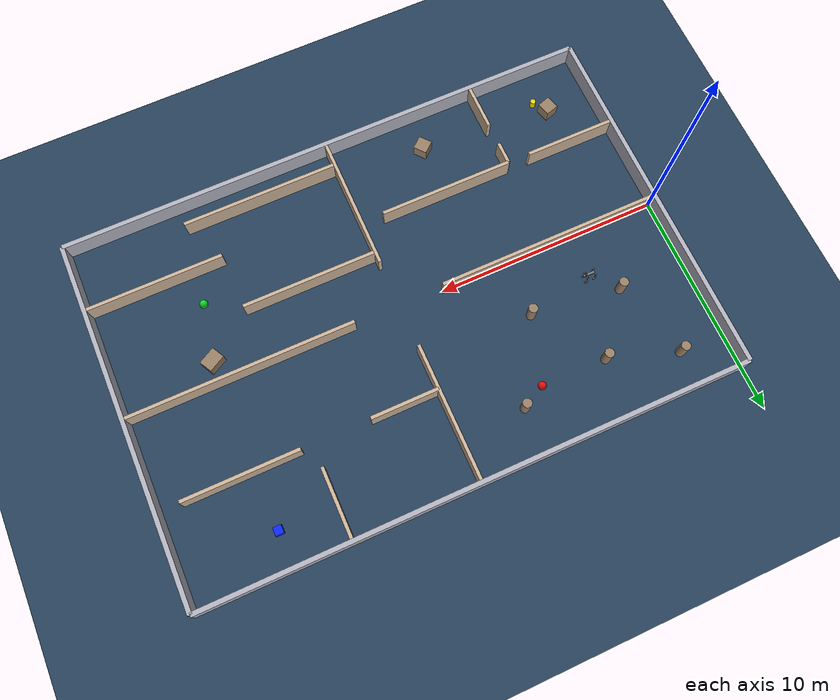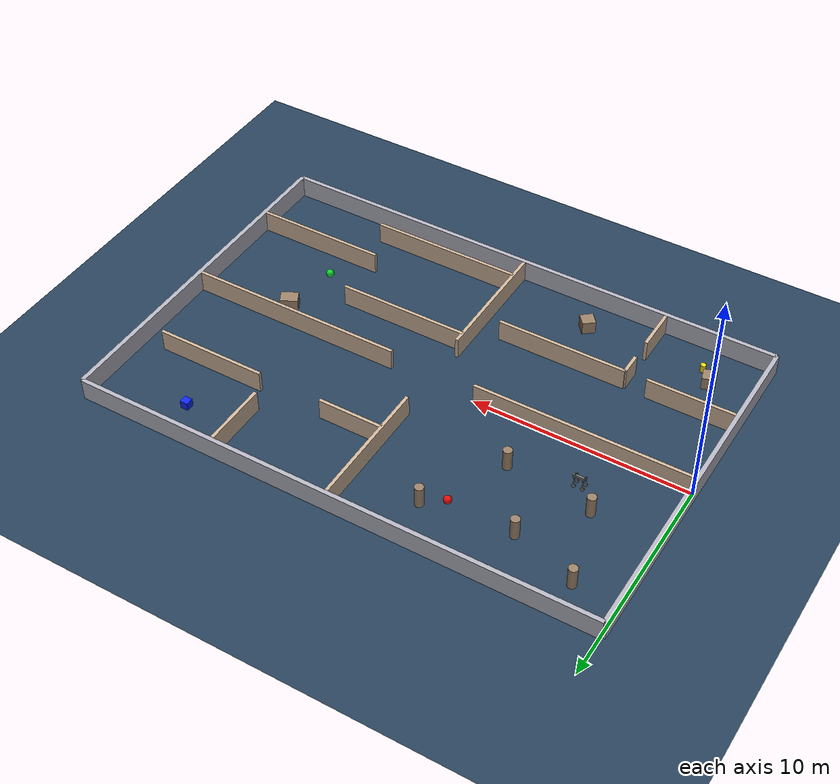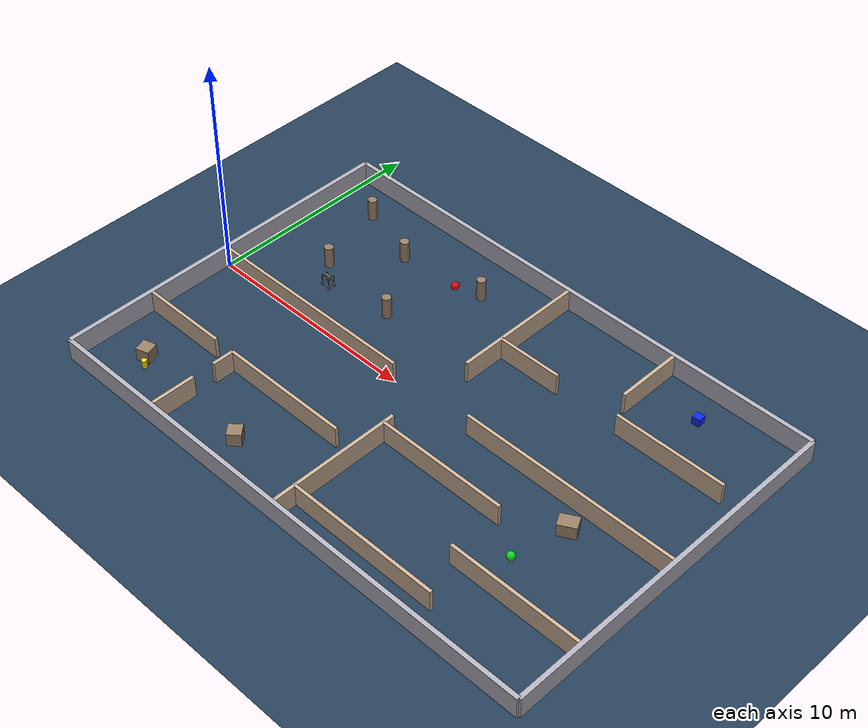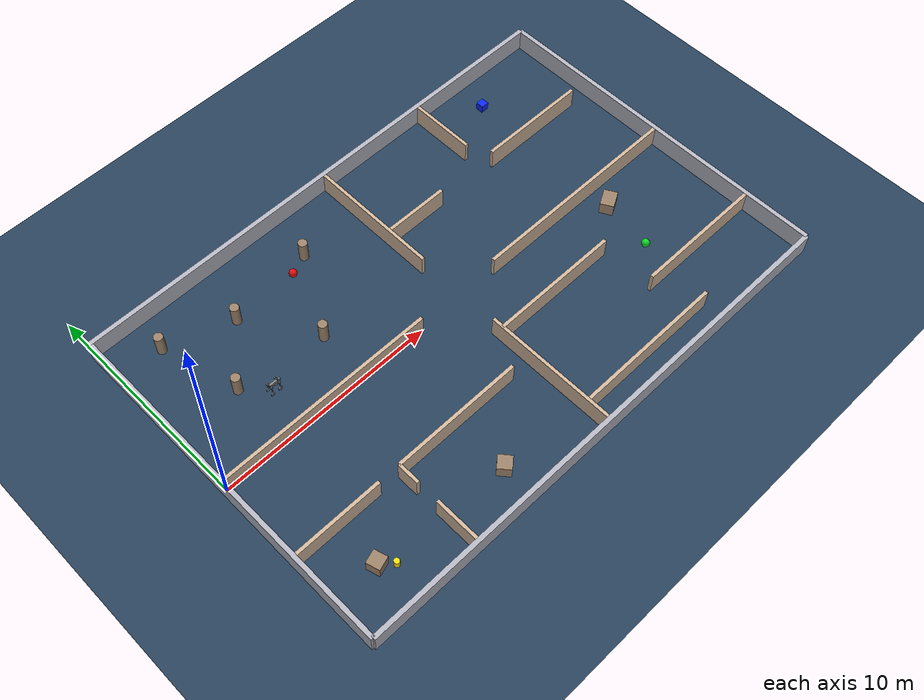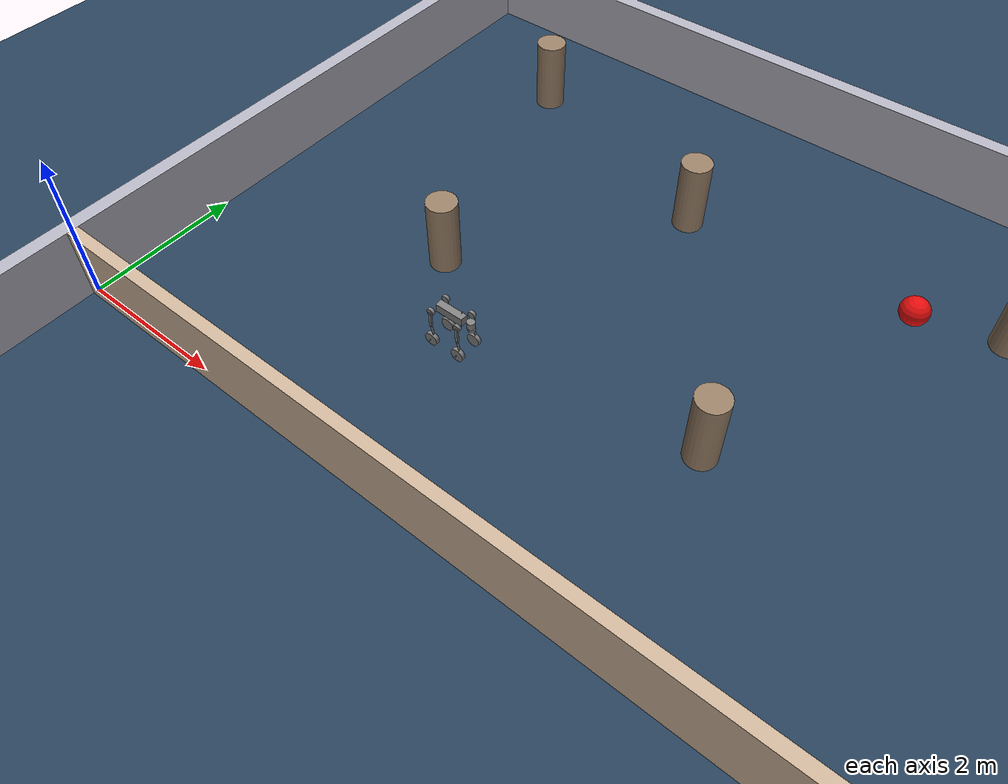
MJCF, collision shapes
<mujoco model="demo3">
  <compiler angle="radian" meshdir="assets" autolimits="true"/>

  <option timestep="0.002" gravity="0 0 -9.81" integrator="implicitfast"
          cone="elliptic" impratio="100"/>

  <statistic center="12 0 0.5" extent="16"/>

  <visual>
    <headlight diffuse="0.6 0.6 0.6" ambient="0.3 0.3 0.3" specular="0 0 0"/>
    <rgba haze="0.15 0.25 0.35 1"/>
    <global azimuth="-130" elevation="-20" offwidth="1920" offheight="1080"/>
    <quality shadowsize="4096" offsamples="8"/>
    <map shadowscale="0.5" shadowclip="1"/>
  </visual>

  <default>
    <default class="go2">
      <geom friction="0.4" margin="0.001" condim="1"/>
      <joint axis="0 1 0" damping="0.1" armature="0.01" frictionloss="0.2"/>
      <motor ctrlrange="-23.7 23.7"/>
      <default class="abduction">
        <joint axis="1 0 0" range="-1.0472 1.0472"/>
      </default>
      <default class="hip">
        <default class="front_hip">
          <joint range="-1.5708 3.4907"/>
        </default>
        <default class="back_hip">
          <joint range="-0.5236 4.5379"/>
        </default>
      </default>
      <default class="knee">
        <joint range="-2.7227 -0.83776"/>
        <motor ctrlrange="-45.43 45.43"/>
      </default>
      <default class="visual">
        <geom type="mesh" contype="0" conaffinity="0" group="2"/>
      </default>
      <default class="collision">
        <geom group="3"/>
        <default class="foot">
          <geom size="0.022" pos="-0.002 0 -0.2264" priority="1" condim="6"
            friction="0.8 0.02 0.01"/>
        </default>
      </default>
    </default>
    <default class="world">
      <geom contype="1" conaffinity="1"/>
    </default>
  </default>

  <asset>
    <!-- Skybox -->
    <texture type="skybox" builtin="gradient" rgb1="0.3 0.5 0.7" rgb2="0 0 0"
             width="512" height="3072"/>

    <!-- Ground -->
    <texture type="2d" name="groundplane" builtin="checker" mark="edge"
             rgb1="0.2 0.3 0.4" rgb2="0.1 0.2 0.3" markrgb="0.8 0.8 0.8"
             width="300" height="300"/>
    <material name="groundplane" texture="groundplane" texuniform="true"
              texrepeat="5 5" reflectance="0.2"/>

    <!-- Robot materials -->
    <material name="metal" rgba=".9 .95 .95 1"/>
    <material name="black" rgba="0 0 0 1"/>
    <material name="white" rgba="1 1 1 1"/>
    <material name="gray" rgba="0.671705 0.692426 0.774270 1"/>

    <!-- Robot mesh assets (official Unitree OBJ) -->
    <mesh file="base_0.obj"/>
    <mesh file="base_1.obj"/>
    <mesh file="base_2.obj"/>
    <mesh file="base_3.obj"/>
    <mesh file="base_4.obj"/>
    <mesh file="hip_0.obj"/>
    <mesh file="hip_1.obj"/>
    <mesh file="thigh_0.obj"/>
    <mesh file="thigh_1.obj"/>
    <mesh file="thigh_mirror_0.obj"/>
    <mesh file="thigh_mirror_1.obj"/>
    <mesh file="calf_mirror_0.obj"/>
    <mesh file="calf_mirror_1.obj"/>
    <mesh file="calf.stl"/>
    <mesh file="calf_mirror.stl"/>
    <mesh file="foot.obj"/>
    <mesh file="wheel.stl"/>

    <!-- World materials -->
    <material name="wall_mat" rgba="0.7 0.7 0.75 1"/>
    <material name="divider_mat" rgba="0.8 0.7 0.6 1"/>
    <material name="green_mat" rgba="0.0 1.0 0.0 1" specular="0.3"/>
    <material name="obstacle_mat" rgba="0.6 0.5 0.4 1"/>
  </asset>

  <worldbody>
    <!-- Lighting -->
    <light pos="12 0 10" dir="0 0 -1" directional="true" diffuse="0.8 0.8 0.8"
           castshadow="true"/>

    <!-- Ground plane -->
    <geom name="ground" type="plane" size="50 50 0.1" material="groundplane"
          class="world"/>

    <!-- === Outer walls (24×16m, x∈[0,24], y∈[-8,8]) === -->
    <geom name="wall_north" type="box" pos="12.0 8.1 0.5"
          size="12.1 0.1 0.5" material="wall_mat" class="world"/>
    <geom name="wall_south" type="box" pos="12.0 -8.1 0.5"
          size="12.1 0.1 0.5" material="wall_mat" class="world"/>
    <geom name="wall_west" type="box" pos="-0.1 0 0.5"
          size="0.1 8.1 0.5" material="wall_mat" class="world"/>
    <geom name="wall_east" type="box" pos="24.1 0 0.5"
          size="0.1 8.1 0.5" material="wall_mat" class="world"/>

    <geom name="cross_h_w" type="box" pos="5.0 0 0.5"
          size="5.0 0.075 0.5" material="divider_mat" class="world"/>
    <geom name="cross_h_e" type="box" pos="19.0 0 0.5"
          size="5.0 0.075 0.5" material="divider_mat" class="world"/>
    <geom name="cross_v_n" type="box" pos="12 5.0 0.5"
          size="0.075 3.0 0.5" material="divider_mat" class="world"/>
    <geom name="cross_v_s" type="box" pos="12 -5.0 0.5"
          size="0.075 3.0 0.5" material="divider_mat" class="world"/>

    <geom name="ne_div_h_west" type="box" pos="13.5 4.0 0.5"
          size="1.5 0.075 0.5" material="divider_mat" class="world"/>
    <geom name="ne_div_h_east" type="box" pos="20.55 4.0 0.5"
          size="2.55 0.075 0.5" material="divider_mat" class="world"/>
    <geom name="ne_div_v_north" type="box" pos="17.5 6.5 0.5"
          size="0.075 1.5 0.5" material="divider_mat" class="world"/>

    <geom name="nw_pillar_1" type="cylinder" pos="3.0 3.0 0.5"
          size="0.20 0.5" material="obstacle_mat" class="world"/>
    <geom name="nw_pillar_2" type="cylinder" pos="7.0 2.5 0.5"
          size="0.20 0.5" material="obstacle_mat" class="world"/>
    <geom name="nw_pillar_3" type="cylinder" pos="5.0 5.5 0.5"
          size="0.20 0.5" material="obstacle_mat" class="world"/>
    <geom name="nw_pillar_4" type="cylinder" pos="9.0 6.0 0.5"
          size="0.20 0.5" material="obstacle_mat" class="world"/>
    <geom name="nw_pillar_5" type="cylinder" pos="2.0 6.5 0.5"
          size="0.20 0.5" material="obstacle_mat" class="world"/>

    <geom name="sw_h_1" type="box" pos="2.0 -4.0 0.5"
          size="2.0 0.075 0.5" material="divider_mat" class="world"/>
    <geom name="sw_h_2" type="box" pos="8.0 -4.0 0.5"
          size="3.0 0.075 0.5" material="divider_mat" class="world"/>
    <geom name="sw_v_1" type="box" pos="5.0 -4.5 0.5"
          size="0.075 0.5 0.5" material="divider_mat" class="world"/>
    <geom name="sw_v_2" type="box" pos="5.0 -7.0 0.5"
          size="0.075 1.0 0.5" material="divider_mat" class="world"/>

    <geom name="zigzag_1" type="box" pos="15.0 -2.5 0.5"
          size="3.0 0.075 0.5" material="divider_mat" class="world"/>
    <geom name="zigzag_2" type="box" pos="21.0 -5.0 0.5"
          size="3.0 0.075 0.5" material="divider_mat" class="world"/>
    <geom name="zigzag_3" type="box" pos="15.5 -7.0 0.5"
          size="3.5 0.075 0.5" material="divider_mat" class="world"/>

    <geom name="artifact_red_sphere"
          type="sphere" pos="8.0 5.5 0.35" size="0.18"
          rgba="0.9 0.05 0.05 1" contype="0" conaffinity="0" group="1"/>

    <geom name="artifact_blue_box"
          type="box" pos="20.0 6.5 0.35" size="0.18 0.18 0.18"
          rgba="0.05 0.15 0.95 1" contype="0" conaffinity="0" group="1"/>

    <geom name="artifact_yellow_cylinder"
          type="cylinder" pos="2.5 -6.5 0.35" size="0.12 0.18"
          rgba="0.95 0.85 0.05 1" contype="0" conaffinity="0" group="1"/>

    <geom name="artifact_green_sphere"
          type="sphere" pos="19.5 -3.5 0.35" size="0.18"
          rgba="0.05 0.85 0.15 1" contype="0" conaffinity="0" group="1"/>

    <!-- === Clutter box obstacles (sparse) === -->
    <geom name="box_obstacle_1" type="box" pos="2.0 -6.0 0.3"
          size="0.3 0.3 0.3" euler="0 0 0.3" material="obstacle_mat" class="world"/>
    <geom name="box_obstacle_2" type="box" pos="8.0 -6.5 0.3"
          size="0.3 0.3 0.3" euler="0 0 0.7" material="obstacle_mat" class="world"/>
    <geom name="box_obstacle_3" type="box" pos="20.0 -1.0 0.3"
          size="0.4 0.3 0.3" euler="0 0 0.5" material="obstacle_mat" class="world"/>

    <!-- === Go2W Robot (spawn at (4, 2, 0.6) in NW quadrant) === -->
    <body name="base_link" pos="4.0 2.0 0.6" childclass="go2">
      <inertial pos="0.021112 0 -0.005366" quat="-0.000543471 0.713435 -0.00173769 0.700719"
        mass="6.921" diaginertia="0.107027 0.0980771 0.0244531"/>
      <freejoint name="root"/>

      <!-- Base visual meshes (OBJ with materials) -->
      <geom mesh="base_0" material="black" class="visual"/>
      <geom mesh="base_1" material="black" class="visual"/>
      <geom mesh="base_2" material="black" class="visual"/>
      <geom mesh="base_3" material="white" class="visual"/>
      <geom mesh="base_4" material="gray" class="visual"/>
      <!-- Base collision -->
      <geom name="base_collision" size="0.1881 0.04675 0.057" type="box" class="collision"/>
      <geom name="head_upper_collision" size="0.05 0.045" pos="0.285 0 0.01" type="cylinder" class="collision"/>
      <geom name="head_lower_collision" size="0.047" pos="0.293 0 -0.06" class="collision"/>

      <!-- Body-frame site for pose sensors (avoids inertial-frame rotation) -->
      <site name="base_link_site" pos="0 0 0" size="0.01"/>

      <!-- IMU site -->
      <site name="imu" pos="-0.02557 0 0.04232" size="0.01"/>

      <!-- Livox MID-360 LiDAR site (matches URDF: base→imu→livox_mid360_base) -->
      <!-- pos = imu_pos + livox_offset = (-0.02557+0.1870, 0, 0.04232+0.0803) -->
      <site name="livox_mid360" pos="0.16143 0 0.12262" euler="0 0.2269 0" size="0.01"/>

      <camera name="front_camera" pos="0.30 0 -0.01"
              xyaxes="0 -1 0 0.0872 0 0.9962"
              fovy="80" resolution="1280 720" mode="fixed"/>

      <!-- ====== Front-Left leg ====== -->
      <body name="FL_hip" pos="0.1934 0.0465 0">
        <inertial pos="-0.0054 0.00194 -0.000105" quat="0.497014 0.499245 0.505462 0.498237"
          mass="0.678" diaginertia="0.00088403 0.000596003 0.000479967"/>
        <joint name="FL_hip_joint" class="abduction"/>
        <geom mesh="hip_0" material="metal" class="visual"/>
        <geom mesh="hip_1" material="gray" class="visual"/>
        <geom name="FL_hip_collision" size="0.046 0.02" pos="0 0.08 0" quat="1 1 0 0" type="cylinder" class="collision"/>
        <body name="FL_thigh" pos="0 0.0955 0">
          <inertial pos="-0.00374 -0.0223 -0.0327" quat="0.829533 0.0847635 -0.0200632 0.551623"
            mass="1.152" diaginertia="0.00594973 0.00584149 0.000878787"/>
          <joint name="FL_thigh_joint" class="front_hip"/>
          <geom mesh="thigh_0" material="metal" class="visual"/>
          <geom mesh="thigh_1" material="gray" class="visual"/>
          <geom name="FL_thigh_collision" size="0.1065 0.01225 0.017" pos="0 0 -0.1065" quat="0.707107 0 0.707107 0"
            type="box" class="collision"/>
          <body name="FL_calf" pos="0 0 -0.213">
            <inertial pos="0.00629595 -0.000622121 -0.141417"
              quat="0.710672 0.00154099 -0.00450087 0.703508"
              mass="0.241352" diaginertia="0.0014901 0.00146356 5.31397e-05"/>
            <joint name="FL_calf_joint" class="knee"/>
            <geom mesh="calf" material="gray" class="visual"/>
            <geom name="FL_calf_upper_collision" size="0.012 0.06" pos="0.008 0 -0.06" quat="0.994493 0 -0.104807 0"
              type="cylinder" class="collision"/>
            <geom name="FL_calf_lower_collision" size="0.011 0.0325" pos="0.02 0 -0.148" quat="0.999688 0 0.0249974 0"
              type="cylinder" class="collision"/>
            <body name="FL_foot" pos="0 0 -0.2264">
              <inertial pos="-0.0 0.04 -0.0"
                quat="0.661419 0.248219 0.250051 0.662108" mass="0.98"
                diaginertia="0.003 0.0016 0.0016"/>
              <joint name="FL_foot_joint" pos="0 0 0" axis="0 1 0"/>
              <geom type="mesh" rgba="0.15 0.15 0.15 1" mesh="wheel" pos="0 0.0 0"
                quat="0.0 1.0 0.0 0.0" class="visual"/>
              <!-- Explicit named cylinder collision geom (replaces unnamed
                   mesh collision that MuJoCo was not reliably picking up
                   for wheel-vs-wall contacts). -->
              <geom name="FL_wheel_collision" type="cylinder" size="0.086 0.026"
                pos="0 0 0" quat="0.707107 0.707107 0 0"
                class="collision" condim="6" priority="1"
                friction="0.8 0.02 0.01"/>
              <site name="FL_foot_site" pos="0 0.04 0" size="0.01"/>
            </body>
          </body>
        </body>
      </body>

      <!-- ====== Front-Right leg ====== -->
      <body name="FR_hip" pos="0.1934 -0.0465 0">
        <inertial pos="-0.0054 -0.00194 -0.000105" quat="0.498237 0.505462 0.499245 0.497014"
          mass="0.678" diaginertia="0.00088403 0.000596003 0.000479967"/>
        <joint name="FR_hip_joint" class="abduction"/>
        <geom mesh="hip_0" material="metal" class="visual" quat="4.63268e-05 1 0 0"/>
        <geom mesh="hip_1" material="gray" class="visual" quat="4.63268e-05 1 0 0"/>
        <geom name="FR_hip_collision" size="0.046 0.02" pos="0 -0.08 0" quat="0.707107 0.707107 0 0" type="cylinder"
          class="collision"/>
        <body name="FR_thigh" pos="0 -0.0955 0">
          <inertial pos="-0.00374 0.0223 -0.0327" quat="0.551623 -0.0200632 0.0847635 0.829533"
            mass="1.152" diaginertia="0.00594973 0.00584149 0.000878787"/>
          <joint name="FR_thigh_joint" class="front_hip"/>
          <geom mesh="thigh_mirror_0" material="metal" class="visual"/>
          <geom mesh="thigh_mirror_1" material="gray" class="visual"/>
          <geom name="FR_thigh_collision" size="0.1065 0.01225 0.017" pos="0 0 -0.1065" quat="0.707107 0 0.707107 0"
            type="box" class="collision"/>
          <body name="FR_calf" pos="0 0 -0.213">
            <inertial pos="0.00629595 0.000622121 -0.141417"
              quat="0.703508 -0.00450087 0.00154099 0.710672"
              mass="0.241352" diaginertia="0.0014901 0.00146356 5.31397e-05"/>
            <joint name="FR_calf_joint" class="knee"/>
            <geom mesh="calf_mirror" material="gray" class="visual"/>
            <geom name="FR_calf_upper_collision" size="0.013 0.06" pos="0.01 0 -0.06" quat="0.995004 0 -0.0998334 0"
              type="cylinder" class="collision"/>
            <geom name="FR_calf_lower_collision" size="0.011 0.0325" pos="0.02 0 -0.148" quat="0.999688 0 0.0249974 0"
              type="cylinder" class="collision"/>
            <body name="FR_foot" pos="0 0 -0.2264">
              <inertial pos="-0.0 -0.04 -0.0"
                quat="0.661419 0.248219 0.250051 0.662108" mass="0.98"
                diaginertia="0.003 0.0016 0.0016"/>
              <joint name="FR_foot_joint" pos="0 0 0" axis="0 1 0"/>
              <geom type="mesh" rgba="0.15 0.15 0.15 1" mesh="wheel" pos="0 -0.0 0" class="visual"/>
              <geom name="FR_wheel_collision" type="cylinder" size="0.086 0.026"
                pos="0 0 0" quat="0.707107 0.707107 0 0"
                class="collision" condim="6" priority="1"
                friction="0.8 0.02 0.01"/>
              <site name="FR_foot_site" pos="0 -0.04 0" size="0.01"/>
            </body>
          </body>
        </body>
      </body>

      <!-- ====== Rear-Left leg ====== -->
      <body name="RL_hip" pos="-0.1934 0.0465 0">
        <inertial pos="0.0054 0.00194 -0.000105" quat="0.505462 0.498237 0.497014 0.499245"
          mass="0.678" diaginertia="0.00088403 0.000596003 0.000479967"/>
        <joint name="RL_hip_joint" class="abduction"/>
        <geom mesh="hip_0" material="metal" class="visual" quat="4.63268e-05 0 1 0"/>
        <geom mesh="hip_1" material="gray" class="visual" quat="4.63268e-05 0 1 0"/>
        <geom name="RL_hip_collision" size="0.046 0.02" pos="0 0.08 0" quat="0.707107 0.707107 0 0" type="cylinder"
          class="collision"/>
        <body name="RL_thigh" pos="0 0.0955 0">
          <inertial pos="-0.00374 -0.0223 -0.0327" quat="0.829533 0.0847635 -0.0200632 0.551623"
            mass="1.152" diaginertia="0.00594973 0.00584149 0.000878787"/>
          <joint name="RL_thigh_joint" class="back_hip"/>
          <geom mesh="thigh_0" material="metal" class="visual"/>
          <geom mesh="thigh_1" material="gray" class="visual"/>
          <geom name="RL_thigh_collision" size="0.1065 0.01225 0.017" pos="0 0 -0.1065" quat="0.707107 0 0.707107 0"
            type="box" class="collision"/>
          <body name="RL_calf" pos="0 0 -0.213">
            <inertial pos="0.00629595 -0.000622121 -0.141417"
              quat="0.710672 0.00154099 -0.00450087 0.703508"
              mass="0.241352" diaginertia="0.0014901 0.00146356 5.31397e-05"/>
            <joint name="RL_calf_joint" class="knee"/>
            <geom mesh="calf" material="gray" class="visual"/>
            <geom name="RL_calf_upper_collision" size="0.013 0.06" pos="0.01 0 -0.06" quat="0.995004 0 -0.0998334 0"
              type="cylinder" class="collision"/>
            <geom name="RL_calf_lower_collision" size="0.011 0.0325" pos="0.02 0 -0.148" quat="0.999688 0 0.0249974 0"
              type="cylinder" class="collision"/>
            <body name="RL_foot" pos="0 0 -0.2264">
              <inertial pos="-0.0 0.04 -0.0"
                quat="0.661419 0.248219 0.250051 0.662108" mass="0.98"
                diaginertia="0.003 0.0016 0.0016"/>
              <joint name="RL_foot_joint" pos="0 0 0" axis="0 1 0"/>
              <geom type="mesh" rgba="0.15 0.15 0.15 1" mesh="wheel" pos="0 0.0 0"
                quat="0.0 1.0 0.0 0.0" class="visual"/>
              <geom name="RL_wheel_collision" type="cylinder" size="0.086 0.026"
                pos="0 0 0" quat="0.707107 0.707107 0 0"
                class="collision" condim="6" priority="1"
                friction="0.8 0.02 0.01"/>
              <site name="RL_foot_site" pos="0 0.04 0" size="0.01"/>
            </body>
          </body>
        </body>
      </body>

      <!-- ====== Rear-Right leg ====== -->
      <body name="RR_hip" pos="-0.1934 -0.0465 0">
        <inertial pos="0.0054 -0.00194 -0.000105" quat="0.499245 0.497014 0.498237 0.505462"
          mass="0.678" diaginertia="0.00088403 0.000596003 0.000479967"/>
        <joint name="RR_hip_joint" class="abduction"/>
        <geom mesh="hip_0" material="metal" class="visual"
          quat="2.14617e-09 4.63268e-05 4.63268e-05 -1"/>
        <geom mesh="hip_1" material="gray" class="visual"
          quat="2.14617e-09 4.63268e-05 4.63268e-05 -1"/>
        <geom name="RR_hip_collision" size="0.046 0.02" pos="0 -0.08 0" quat="0.707107 0.707107 0 0" type="cylinder"
          class="collision"/>
        <body name="RR_thigh" pos="0 -0.0955 0">
          <inertial pos="-0.00374 0.0223 -0.0327" quat="0.551623 -0.0200632 0.0847635 0.829533"
            mass="1.152" diaginertia="0.00594973 0.00584149 0.000878787"/>
          <joint name="RR_thigh_joint" class="back_hip"/>
          <geom mesh="thigh_mirror_0" material="metal" class="visual"/>
          <geom mesh="thigh_mirror_1" material="gray" class="visual"/>
          <geom name="RR_thigh_collision" size="0.1065 0.01225 0.017" pos="0 0 -0.1065" quat="0.707107 0 0.707107 0"
            type="box" class="collision"/>
          <body name="RR_calf" pos="0 0 -0.213">
            <inertial pos="0.00629595 0.000622121 -0.141417"
              quat="0.703508 -0.00450087 0.00154099 0.710672"
              mass="0.241352" diaginertia="0.0014901 0.00146356 5.31397e-05"/>
            <joint name="RR_calf_joint" class="knee"/>
            <geom mesh="calf_mirror" material="gray" class="visual"/>
            <geom name="RR_calf_upper_collision" size="0.013 0.06" pos="0.01 0 -0.06" quat="0.995004 0 -0.0998334 0"
              type="cylinder" class="collision"/>
            <geom name="RR_calf_lower_collision" size="0.011 0.0325" pos="0.02 0 -0.148" quat="0.999688 0 0.0249974 0"
              type="cylinder" class="collision"/>
            <body name="RR_foot" pos="0 0 -0.2264">
              <inertial pos="-0.0 -0.04 -0.0"
                quat="0.661419 0.248219 0.250051 0.662108" mass="0.98"
                diaginertia="0.003 0.0016 0.0016"/>
              <joint name="RR_foot_joint" pos="0 0 0" axis="0 1 0"/>
              <geom type="mesh" rgba="0.15 0.15 0.15 1" mesh="wheel" pos="0 -0.00 0" class="visual"/>
              <geom name="RR_wheel_collision" type="cylinder" size="0.086 0.026"
                pos="0 0 0" quat="0.707107 0.707107 0 0"
                class="collision" condim="6" priority="1"
                friction="0.8 0.02 0.01"/>
              <site name="RR_foot_site" pos="0 -0.04 0" size="0.01"/>
            </body>
          </body>
        </body>
      </body>
    </body>
  </worldbody>

  <!-- Actuators: effort for leg joints, velocity for wheel joints -->
  <actuator>
    <motor class="abduction" name="FL_hip" joint="FL_hip_joint"/>
    <motor class="front_hip" name="FL_thigh" joint="FL_thigh_joint"/>
    <motor class="knee" name="FL_calf" joint="FL_calf_joint"/>

    <motor class="abduction" name="FR_hip" joint="FR_hip_joint"/>
    <motor class="front_hip" name="FR_thigh" joint="FR_thigh_joint"/>
    <motor class="knee" name="FR_calf" joint="FR_calf_joint"/>

    <motor class="abduction" name="RL_hip" joint="RL_hip_joint"/>
    <motor class="back_hip" name="RL_thigh" joint="RL_thigh_joint"/>
    <motor class="knee" name="RL_calf" joint="RL_calf_joint"/>

    <motor class="abduction" name="RR_hip" joint="RR_hip_joint"/>
    <motor class="back_hip" name="RR_thigh" joint="RR_thigh_joint"/>
    <motor class="knee" name="RR_calf" joint="RR_calf_joint"/>

    <velocity name="FL_wheel" joint="FL_foot_joint" ctrlrange="-15 15" kv="5.0"/>
    <velocity name="FR_wheel" joint="FR_foot_joint" ctrlrange="-15 15" kv="5.0"/>
    <velocity name="RL_wheel" joint="RL_foot_joint" ctrlrange="-15 15" kv="5.0"/>
    <velocity name="RR_wheel" joint="RR_foot_joint" ctrlrange="-15 15" kv="5.0"/>
  </actuator>

  <!-- Sensors -->
  <sensor>
    <!-- IMU (accel + gyro only; framequat removed to avoid DFKI creating
         a bogus pose sensor for "imu" that reads garbage position data) -->
    <accelerometer name="imu_accel" site="imu"/>
    <gyro name="imu_gyro" site="imu"/>

    <!-- Foot contact (touch sensors) -->
    <touch name="FL_foot_contact" site="FL_foot_site"/>
    <touch name="FR_foot_contact" site="FR_foot_site"/>
    <touch name="RL_foot_contact" site="RL_foot_site"/>
    <touch name="RR_foot_contact" site="RR_foot_site"/>

    <!-- Base body state (ground truth) — use site to get body frame, not inertial frame -->
    <framepos name="base_pos" objtype="site" objname="base_link_site"/>
    <framequat name="base_quat" objtype="site" objname="base_link_site"/>
    <framelinvel name="base_linvel" objtype="site" objname="base_link_site"/>
    <frameangvel name="base_angvel" objtype="site" objname="base_link_site"/>
  </sensor>
</mujoco>
